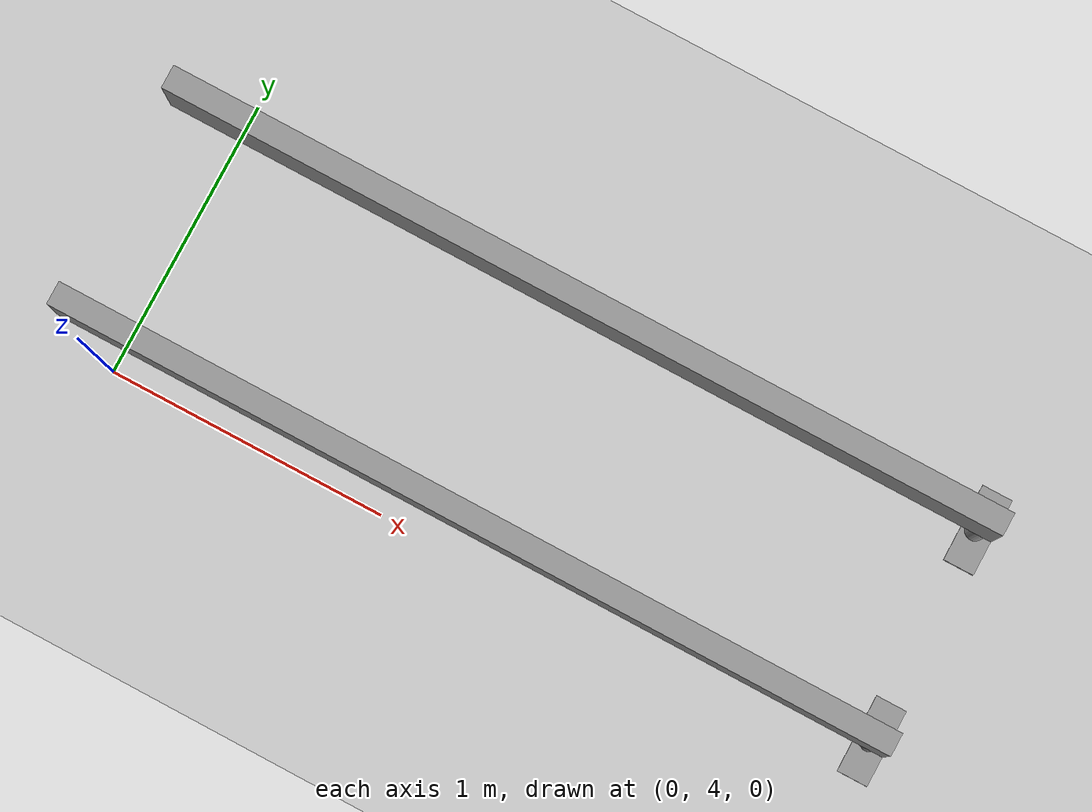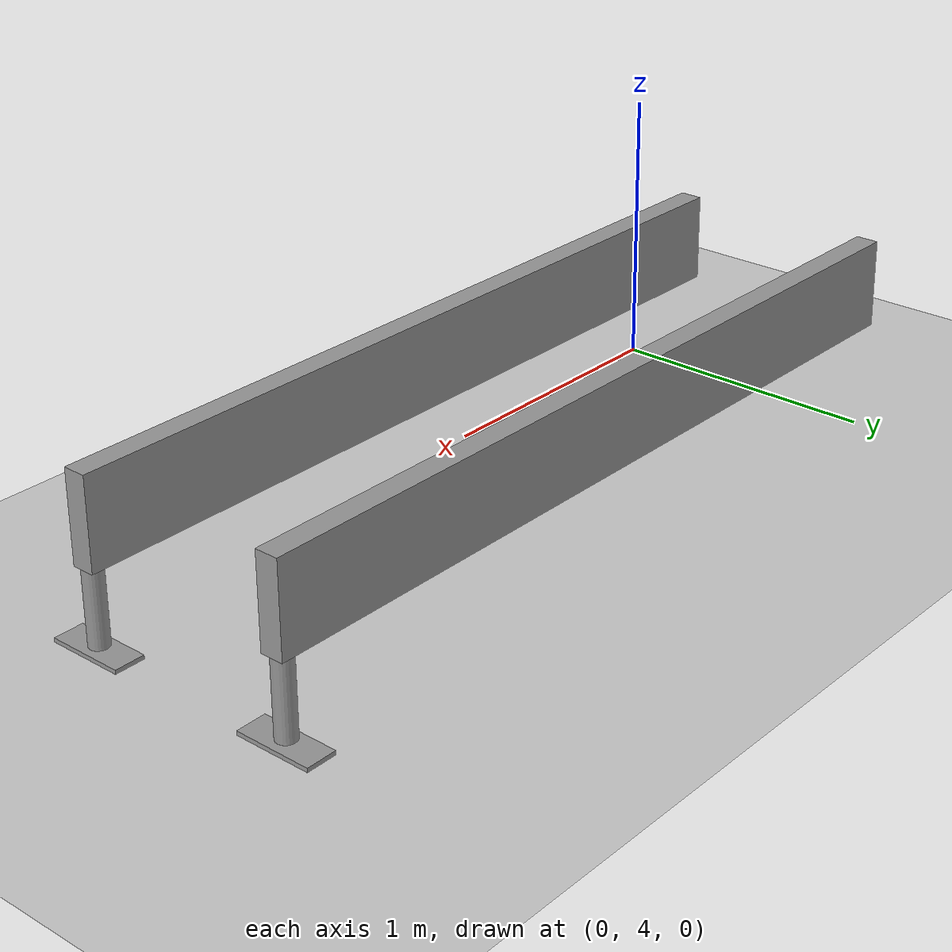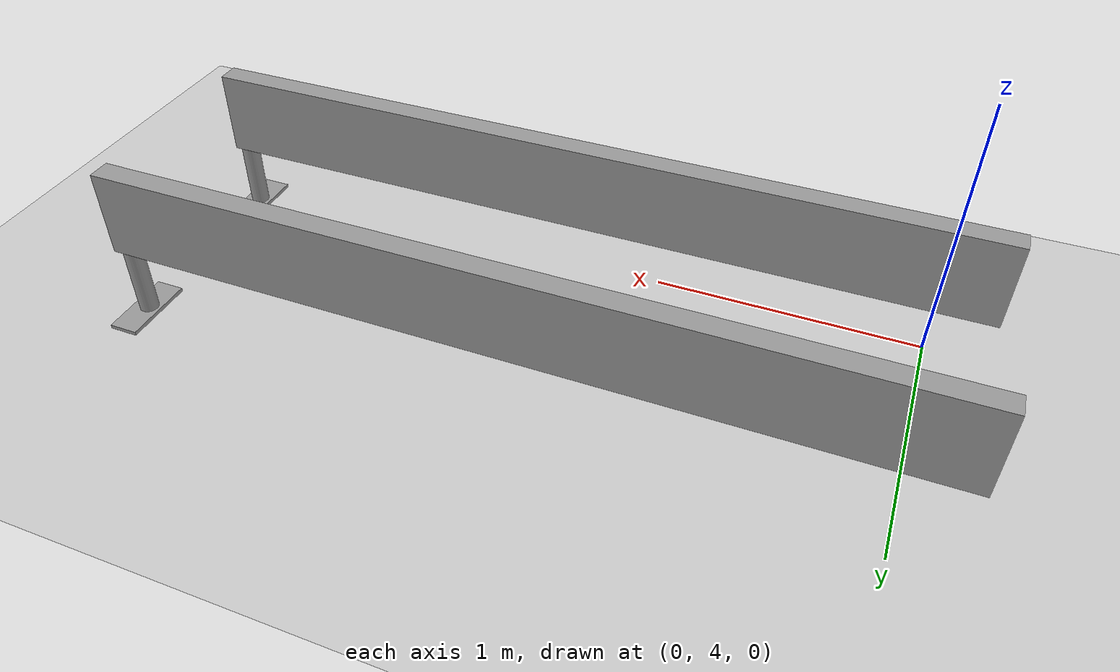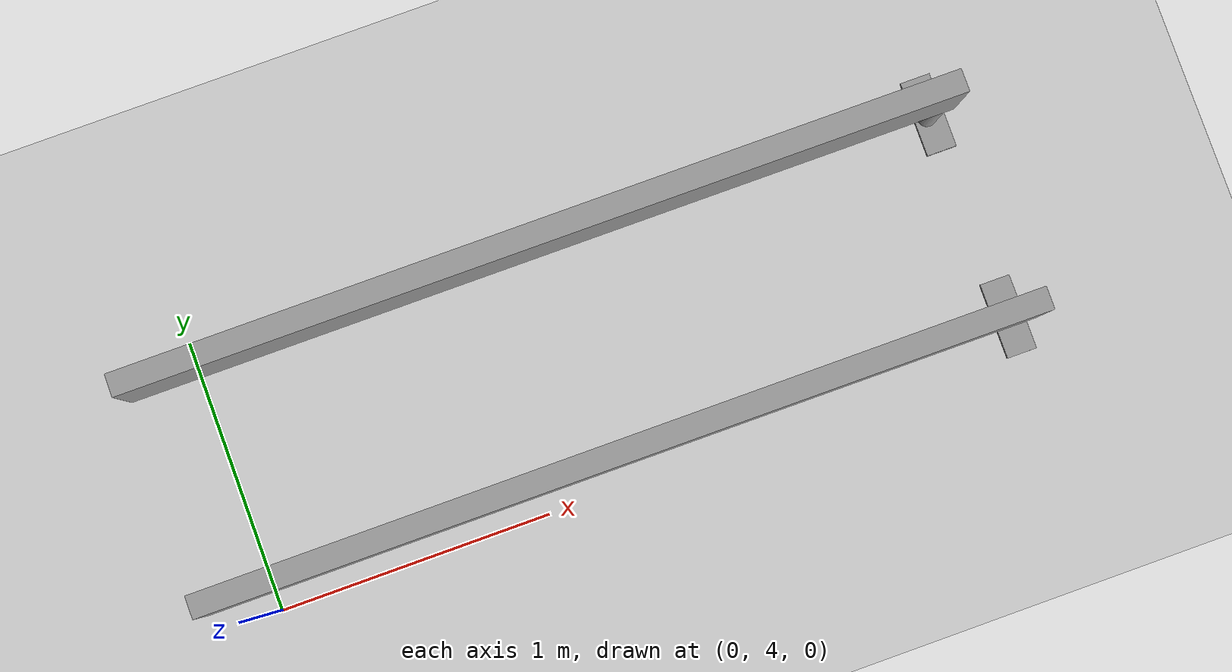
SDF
<sdf version="1.6">
 <world name="default">
  <model name="ground_plane">
   <static>1</static>
   <link name="link">
    <collision name="collision">
     <geometry><plane><normal>0 0 1</normal><size>100 100</size></plane></geometry>
     <surface><friction><ode><mu>100</mu><mu2>50</mu2></ode></friction></surface>
    </collision>
    <visual name="visual">
     <cast_shadows>0</cast_shadows>
     <geometry><plane><normal>0 0 1</normal><size>100 100</size></plane></geometry>
     <material>
      <script><uri>file://media/materials/scripts/gazebo.material</uri><name>Gazebo/Grey</name></script>
     </material>
    </visual>
   </link>
  </model>
  <model name="banchi">
   <link name="link_0_clone_0">
    <inertial>
     <mass>0.000785881</mass>
     <inertia>
      <ixx>5.11476e-06</ixx>
      <ixy>0</ixy>
      <ixz>0</ixz>
      <iyy>8.37345e-07</iyy>
      <iyz>0</iyz>
      <izz>5.8658e-06</izz>
     </inertia>
    </inertial>
    <pose>2.24403 -4.35243 -0.495327 0 -0 0</pose>
    <visual name="visual">
     <geometry><box><size>0.110122 0.278282 0.025669</size></box></geometry>
     <material>
      <lighting>1</lighting>
      <script><uri>file://media/materials/scripts/gazebo.material</uri><name>Gazebo/Grey</name></script>
      <shader type="pixel"/>
     </material>
    </visual>
    <collision name="collision">
     <geometry><box><size>0.110122 0.278282 0.025669</size></box></geometry>
     <surface>
      <friction>
       <ode><mu>1</mu><mu2>1</mu2><fdir1>0 0 0</fdir1><slip1>0</slip1><slip2>0</slip2></ode>
       <torsional>
        <coefficient>1</coefficient>
        <patch_radius>0</patch_radius>
        <surface_radius>0</surface_radius>
        <use_patch_radius>1</use_patch_radius>
        <ode><slip>0</slip></ode>
       </torsional>
      </friction>
      <bounce><restitution_coefficient>0</restitution_coefficient><threshold>1e+06</threshold></bounce>
      <contact>
       <collide_without_contact>0</collide_without_contact>
       <collide_without_contact_bitmask>1</collide_without_contact_bitmask>
       <collide_bitmask>1</collide_bitmask>
       <ode>
        <soft_cfm>0</soft_cfm>
        <soft_erp>0.2</soft_erp>
        <kp>1e+13</kp>
        <kd>1</kd>
        <max_vel>0.01</max_vel>
        <min_depth>0</min_depth>
       </ode>
       <bullet>
        <split_impulse>1</split_impulse>
        <split_impulse_penetration_threshold>-0.01</split_impulse_penetration_threshold>
        <soft_cfm>0</soft_cfm>
        <soft_erp>0.2</soft_erp>
        <kp>1e+13</kp>
        <kd>1</kd>
       </bullet>
      </contact>
     </surface>
    </collision>
   </link>
   <link name="link_0_clone_1">
    <inertial>
     <mass>0.000785881</mass>
     <inertia>
      <ixx>5.11476e-06</ixx>
      <ixy>0</ixy>
      <ixz>0</ixz>
      <iyy>8.37345e-07</iyy>
      <iyz>0</iyz>
      <izz>5.8658e-06</izz>
     </inertia>
    </inertial>
    <pose>2.25812 -5.12778 -0.495327 0 -0 0</pose>
    <visual name="visual">
     <geometry><box><size>0.110122 0.278282 0.025669</size></box></geometry>
     <material>
      <lighting>1</lighting>
      <script><uri>file://media/materials/scripts/gazebo.material</uri><name>Gazebo/Grey</name></script>
      <shader type="pixel"/>
     </material>
    </visual>
    <collision name="collision">
     <geometry><box><size>0.110122 0.278282 0.025669</size></box></geometry>
     <surface>
      <friction>
       <ode><mu>1</mu><mu2>1</mu2><fdir1>0 0 0</fdir1><slip1>0</slip1><slip2>0</slip2></ode>
       <torsional>
        <coefficient>1</coefficient>
        <patch_radius>0</patch_radius>
        <surface_radius>0</surface_radius>
        <use_patch_radius>1</use_patch_radius>
        <ode><slip>0</slip></ode>
       </torsional>
      </friction>
      <bounce><restitution_coefficient>0</restitution_coefficient><threshold>1e+06</threshold></bounce>
      <contact>
       <collide_without_contact>0</collide_without_contact>
       <collide_without_contact_bitmask>1</collide_without_contact_bitmask>
       <collide_bitmask>1</collide_bitmask>
       <ode>
        <soft_cfm>0</soft_cfm>
        <soft_erp>0.2</soft_erp>
        <kp>1e+13</kp>
        <kd>1</kd>
        <max_vel>0.01</max_vel>
        <min_depth>0</min_depth>
       </ode>
       <bullet>
        <split_impulse>1</split_impulse>
        <split_impulse_penetration_threshold>-0.01</split_impulse_penetration_threshold>
        <soft_cfm>0</soft_cfm>
        <soft_erp>0.2</soft_erp>
        <kp>1e+13</kp>
        <kd>1</kd>
       </bullet>
      </contact>
     </surface>
    </collision>
   </link>
   <link name="link_6_clone_clone">
    <pose>0.777449 -4.35589 -0.040555 0 -0 0</pose>
    <inertial>
     <mass>0.0822689</mass>
     <inertia>
      <ixx>0.00690216</ixx>
      <ixy>0</ixy>
      <ixz>0</ixz>
      <iyy>0.0137115</iyy>
      <iyz>0</iyz>
      <izz>0.00690216</izz>
     </inertia>
    </inertial>
    <visual name="visual">
     <geometry><box><size>3 0.082269 0.32559</size></box></geometry>
     <material>
      <lighting>1</lighting>
      <script><uri>file://media/materials/scripts/gazebo.material</uri><name>Gazebo/Grey</name></script>
      <ambient>0.3 0.3 0.3 1</ambient>
      <diffuse>0.7 0.7 0.7 1</diffuse>
      <specular>0.01 0.01 0.01 1</specular>
      <emissive>0 0 0 1</emissive>
      <shader type="vertex"><normal_map>__default__</normal_map></shader>
     </material>
    </visual>
    <collision name="collision">
     <geometry><box><size>3 0.082269 0.32559</size></box></geometry>
     <surface>
      <friction>
       <ode><mu>1</mu><mu2>1</mu2><fdir1>0 0 0</fdir1><slip1>0</slip1><slip2>0</slip2></ode>
       <torsional>
        <coefficient>1</coefficient>
        <patch_radius>0</patch_radius>
        <surface_radius>0</surface_radius>
        <use_patch_radius>1</use_patch_radius>
        <ode><slip>0</slip></ode>
       </torsional>
      </friction>
      <bounce><restitution_coefficient>0</restitution_coefficient><threshold>1e+06</threshold></bounce>
      <contact>
       <collide_without_contact>0</collide_without_contact>
       <collide_without_contact_bitmask>1</collide_without_contact_bitmask>
       <collide_bitmask>1</collide_bitmask>
       <ode>
        <soft_cfm>0</soft_cfm>
        <soft_erp>0.2</soft_erp>
        <kp>1e+13</kp>
        <kd>1</kd>
        <max_vel>0.01</max_vel>
        <min_depth>0</min_depth>
       </ode>
       <bullet>
        <split_impulse>1</split_impulse>
        <split_impulse_penetration_threshold>-0.01</split_impulse_penetration_threshold>
        <soft_cfm>0</soft_cfm>
        <soft_erp>0.2</soft_erp>
        <kp>1e+13</kp>
        <kd>1</kd>
       </bullet>
      </contact>
     </surface>
    </collision>
   </link>
   <link name="link_6_clone_clone_0">
    <pose>0.788549 -5.12903 -0.049118 0 -0 0</pose>
    <inertial>
     <mass>0.0822689</mass>
     <inertia>
      <ixx>0.00690216</ixx>
      <ixy>0</ixy>
      <ixz>0</ixz>
      <iyy>0.0137115</iyy>
      <iyz>0</iyz>
      <izz>0.00690216</izz>
     </inertia>
    </inertial>
    <visual name="visual">
     <geometry><box><size>3 0.082269 0.32559</size></box></geometry>
     <material>
      <lighting>1</lighting>
      <script><uri>file://media/materials/scripts/gazebo.material</uri><name>Gazebo/Grey</name></script>
      <ambient>0.3 0.3 0.3 1</ambient>
      <diffuse>0.7 0.7 0.7 1</diffuse>
      <specular>0.01 0.01 0.01 1</specular>
      <emissive>0 0 0 1</emissive>
      <shader type="vertex"><normal_map>__default__</normal_map></shader>
     </material>
    </visual>
    <collision name="collision">
     <geometry><box><size>3 0.082269 0.32559</size></box></geometry>
     <surface>
      <friction>
       <ode><mu>1</mu><mu2>1</mu2><fdir1>0 0 0</fdir1><slip1>0</slip1><slip2>0</slip2></ode>
       <torsional>
        <coefficient>1</coefficient>
        <patch_radius>0</patch_radius>
        <surface_radius>0</surface_radius>
        <use_patch_radius>1</use_patch_radius>
        <ode><slip>0</slip></ode>
       </torsional>
      </friction>
      <bounce><restitution_coefficient>0</restitution_coefficient><threshold>1e+06</threshold></bounce>
      <contact>
       <collide_without_contact>0</collide_without_contact>
       <collide_without_contact_bitmask>1</collide_without_contact_bitmask>
       <collide_bitmask>1</collide_bitmask>
       <ode>
        <soft_cfm>0</soft_cfm>
        <soft_erp>0.2</soft_erp>
        <kp>1e+13</kp>
        <kd>1</kd>
        <max_vel>0.01</max_vel>
        <min_depth>0</min_depth>
       </ode>
       <bullet>
        <split_impulse>1</split_impulse>
        <split_impulse_penetration_threshold>-0.01</split_impulse_penetration_threshold>
        <soft_cfm>0</soft_cfm>
        <soft_erp>0.2</soft_erp>
        <kp>1e+13</kp>
        <kd>1</kd>
       </bullet>
      </contact>
     </surface>
    </collision>
   </link>
   <link name="link_7_clone_2_clone_15">
    <pose>2.25242 -5.13128 -0.356885 0 -0 0</pose>
    <inertial>
     <mass>0.00501927</mass>
     <inertia>
      <ixx>0.000419846</ixx>
      <ixy>0</ixy>
      <ixz>0</ixz>
      <iyy>0.000419846</iyy>
      <iyz>0</iyz>
      <izz>3.14914e-06</izz>
     </inertia>
    </inertial>
    <visual name="visual">
     <geometry><cylinder><radius>0.0354247</radius><length>0.3</length></cylinder></geometry>
     <material>
      <lighting>1</lighting>
      <script><uri>file://media/materials/scripts/gazebo.material</uri><name>Gazebo/Grey</name></script>
      <ambient>0.3 0.3 0.3 1</ambient>
      <diffuse>0.7 0.7 0.7 1</diffuse>
      <specular>0.01 0.01 0.01 1</specular>
      <emissive>0 0 0 1</emissive>
      <shader type="vertex"><normal_map>__default__</normal_map></shader>
     </material>
    </visual>
    <collision name="collision">
     <geometry><cylinder><radius>0.035425</radius><length>0.3</length></cylinder></geometry>
     <surface>
      <friction>
       <ode><mu>1</mu><mu2>1</mu2><fdir1>0 0 0</fdir1><slip1>0</slip1><slip2>0</slip2></ode>
       <torsional>
        <coefficient>1</coefficient>
        <patch_radius>0</patch_radius>
        <surface_radius>0</surface_radius>
        <use_patch_radius>1</use_patch_radius>
        <ode><slip>0</slip></ode>
       </torsional>
      </friction>
      <bounce><restitution_coefficient>0</restitution_coefficient><threshold>1e+06</threshold></bounce>
      <contact>
       <collide_without_contact>0</collide_without_contact>
       <collide_without_contact_bitmask>1</collide_without_contact_bitmask>
       <collide_bitmask>1</collide_bitmask>
       <ode>
        <soft_cfm>0</soft_cfm>
        <soft_erp>0.2</soft_erp>
        <kp>1e+13</kp>
        <kd>1</kd>
        <max_vel>0.01</max_vel>
        <min_depth>0</min_depth>
       </ode>
       <bullet>
        <split_impulse>1</split_impulse>
        <split_impulse_penetration_threshold>-0.01</split_impulse_penetration_threshold>
        <soft_cfm>0</soft_cfm>
        <soft_erp>0.2</soft_erp>
        <kp>1e+13</kp>
        <kd>1</kd>
       </bullet>
      </contact>
     </surface>
    </collision>
   </link>
   <link name="link_7_clone_2_clone_16">
    <pose>2.23575 -4.35792 -0.340095 0 -0 0</pose>
    <inertial>
     <mass>0.00501927</mass>
     <inertia>
      <ixx>0.000419846</ixx>
      <ixy>0</ixy>
      <ixz>0</ixz>
      <iyy>0.000419846</iyy>
      <iyz>0</iyz>
      <izz>3.14914e-06</izz>
     </inertia>
    </inertial>
    <visual name="visual">
     <geometry><cylinder><radius>0.0354247</radius><length>0.3</length></cylinder></geometry>
     <material>
      <lighting>1</lighting>
      <script><uri>file://media/materials/scripts/gazebo.material</uri><name>Gazebo/Grey</name></script>
      <ambient>0.3 0.3 0.3 1</ambient>
      <diffuse>0.7 0.7 0.7 1</diffuse>
      <specular>0.01 0.01 0.01 1</specular>
      <emissive>0 0 0 1</emissive>
      <shader type="vertex"><normal_map>__default__</normal_map></shader>
     </material>
    </visual>
    <collision name="collision">
     <geometry><cylinder><radius>0.035425</radius><length>0.3</length></cylinder></geometry>
     <surface>
      <friction>
       <ode><mu>1</mu><mu2>1</mu2><fdir1>0 0 0</fdir1><slip1>0</slip1><slip2>0</slip2></ode>
       <torsional>
        <coefficient>1</coefficient>
        <patch_radius>0</patch_radius>
        <surface_radius>0</surface_radius>
        <use_patch_radius>1</use_patch_radius>
        <ode><slip>0</slip></ode>
       </torsional>
      </friction>
      <bounce><restitution_coefficient>0</restitution_coefficient><threshold>1e+06</threshold></bounce>
      <contact>
       <collide_without_contact>0</collide_without_contact>
       <collide_without_contact_bitmask>1</collide_without_contact_bitmask>
       <collide_bitmask>1</collide_bitmask>
       <ode>
        <soft_cfm>0</soft_cfm>
        <soft_erp>0.2</soft_erp>
        <kp>1e+13</kp>
        <kd>1</kd>
        <max_vel>0.01</max_vel>
        <min_depth>0</min_depth>
       </ode>
       <bullet>
        <split_impulse>1</split_impulse>
        <split_impulse_penetration_threshold>-0.01</split_impulse_penetration_threshold>
        <soft_cfm>0</soft_cfm>
        <soft_erp>0.2</soft_erp>
        <kp>1e+13</kp>
        <kd>1</kd>
       </bullet>
      </contact>
     </surface>
    </collision>
   </link>
   <static>1</static>
   <pose>0.510915 9.2351 0.494074 0 -0 0</pose>
  </model>
 </world>
</sdf>
